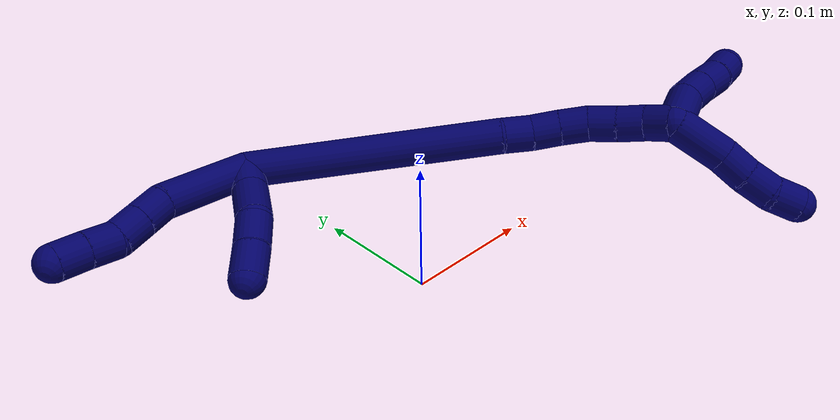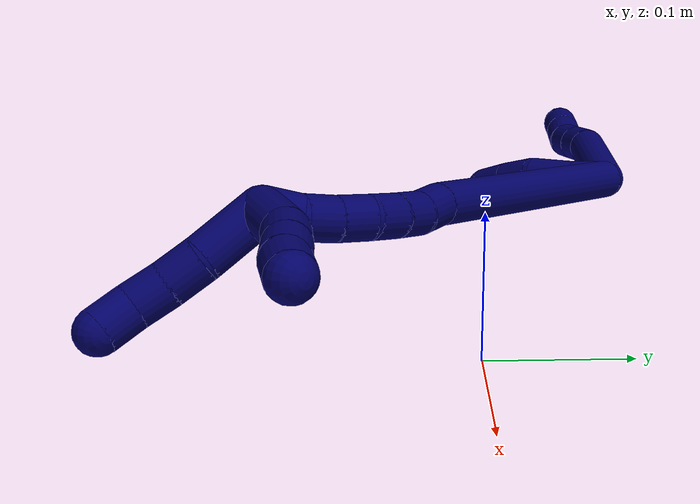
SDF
<sdf version="1.7">
 <world name="default">
  <model name="7">
   <static>0</static>
   <link name="7">
    <collision name="collision-cylinder-e_1_2_8">
     <pose>-0.009172 0.018687 0.026573 -0.612891 -0.275184 0.087569</pose>
     <geometry><cylinder><radius>0.0125</radius><length>0.067512</length></cylinder></geometry>
     <surface>
      <friction><ode><mu>1.16</mu><mu2>1.16</mu2><slip1>0</slip1><slip2>0</slip2></ode></friction>
      <contact><ode><kp>1e+06</kp><kd>1</kd><max_vel>0</max_vel><min_depth>0.001</min_depth></ode></contact>
     </surface>
    </collision>
    <visual name="visual-cylinder-e_1_2_8">
     <pose>-0.009172 0.018687 0.026573 -0.612891 -0.275184 0.087569</pose>
     <geometry><cylinder><radius>0.0125</radius><length>0.067512</length></cylinder></geometry>
     <material><ambient>0.003922 0 0.403922 1</ambient></material>
    </visual>
    <collision name="collision-cylinder-e_2_8_9">
     <pose>-0.021273 0.04032 0.062517 -0.304543 -0.289736 0.044769</pose>
     <geometry><cylinder><radius>0.0125</radius><length>0.0205</length></cylinder></geometry>
     <surface>
      <friction><ode><mu>1.16</mu><mu2>1.16</mu2><slip1>0</slip1><slip2>0</slip2></ode></friction>
      <contact><ode><kp>1e+06</kp><kd>1</kd><max_vel>0</max_vel><min_depth>0.001</min_depth></ode></contact>
     </surface>
    </collision>
    <visual name="visual-cylinder-e_2_8_9">
     <pose>-0.021273 0.04032 0.062517 -0.304543 -0.289736 0.044769</pose>
     <geometry><cylinder><radius>0.0125</radius><length>0.0205</length></cylinder></geometry>
     <material><ambient>0.003922 0 0.403922 1</ambient></material>
    </visual>
    <collision name="collision-cylinder-e_3_9_10">
     <pose>-0.02708 0.046218 0.081116 -0.309722 -0.288804 0.045394</pose>
     <geometry><cylinder><radius>0.0125</radius><length>0.020215</length></cylinder></geometry>
     <surface>
      <friction><ode><mu>1.16</mu><mu2>1.16</mu2><slip1>0</slip1><slip2>0</slip2></ode></friction>
      <contact><ode><kp>1e+06</kp><kd>1</kd><max_vel>0</max_vel><min_depth>0.001</min_depth></ode></contact>
     </surface>
    </collision>
    <visual name="visual-cylinder-e_3_9_10">
     <pose>-0.02708 0.046218 0.081116 -0.309722 -0.288804 0.045394</pose>
     <geometry><cylinder><radius>0.0125</radius><length>0.020215</length></cylinder></geometry>
     <material><ambient>0.003922 0 0.403922 1</ambient></material>
    </visual>
    <collision name="collision-cylinder-e_4_10_11">
     <pose>-0.033011 0.055468 0.098376 -0.664898 -0.290623 0.100968</pose>
     <geometry><cylinder><radius>0.0125</radius><length>0.021305</length></cylinder></geometry>
     <surface>
      <friction><ode><mu>1.16</mu><mu2>1.16</mu2><slip1>0</slip1><slip2>0</slip2></ode></friction>
      <contact><ode><kp>1e+06</kp><kd>1</kd><max_vel>0</max_vel><min_depth>0.001</min_depth></ode></contact>
     </surface>
    </collision>
    <visual name="visual-cylinder-e_4_10_11">
     <pose>-0.033011 0.055468 0.098376 -0.664898 -0.290623 0.100968</pose>
     <geometry><cylinder><radius>0.0125</radius><length>0.021305</length></cylinder></geometry>
     <material><ambient>0.003922 0 0.403922 1</ambient></material>
    </visual>
    <collision name="collision-cylinder-e_5_11_6">
     <pose>-0.039218 0.067482 0.114288 -0.627584 -0.313352 0.102438</pose>
     <geometry><cylinder><radius>0.0125</radius><length>0.020467</length></cylinder></geometry>
     <surface>
      <friction><ode><mu>1.16</mu><mu2>1.16</mu2><slip1>0</slip1><slip2>0</slip2></ode></friction>
      <contact><ode><kp>1e+06</kp><kd>1</kd><max_vel>0</max_vel><min_depth>0.001</min_depth></ode></contact>
     </surface>
    </collision>
    <visual name="visual-cylinder-e_5_11_6">
     <pose>-0.039218 0.067482 0.114288 -0.627584 -0.313352 0.102438</pose>
     <geometry><cylinder><radius>0.0125</radius><length>0.020467</length></cylinder></geometry>
     <material><ambient>0.003922 0 0.403922 1</ambient></material>
    </visual>
    <collision name="collision-cylinder-e_1_2_12">
     <pose>0.00301 -0.003232 0.010593 0.296102 0.265376 0.039807</pose>
     <geometry><cylinder><radius>0.0125</radius><length>0.022954</length></cylinder></geometry>
     <surface>
      <friction><ode><mu>1.16</mu><mu2>1.16</mu2><slip1>0</slip1><slip2>0</slip2></ode></friction>
      <contact><ode><kp>1e+06</kp><kd>1</kd><max_vel>0</max_vel><min_depth>0.001</min_depth></ode></contact>
     </surface>
    </collision>
    <visual name="visual-cylinder-e_1_2_12">
     <pose>0.00301 -0.003232 0.010593 0.296102 0.265376 0.039807</pose>
     <geometry><cylinder><radius>0.0125</radius><length>0.022954</length></cylinder></geometry>
     <material><ambient>0.003922 0 0.403922 1</ambient></material>
    </visual>
    <collision name="collision-cylinder-e_2_12_13">
     <pose>0.010846 -0.009601 0.035571 0.214764 0.316758 0.03443</pose>
     <geometry><cylinder><radius>0.0125</radius><length>0.030986</length></cylinder></geometry>
     <surface>
      <friction><ode><mu>1.16</mu><mu2>1.16</mu2><slip1>0</slip1><slip2>0</slip2></ode></friction>
      <contact><ode><kp>1e+06</kp><kd>1</kd><max_vel>0</max_vel><min_depth>0.001</min_depth></ode></contact>
     </surface>
    </collision>
    <visual name="visual-cylinder-e_2_12_13">
     <pose>0.010846 -0.009601 0.035571 0.214764 0.316758 0.03443</pose>
     <geometry><cylinder><radius>0.0125</radius><length>0.030986</length></cylinder></geometry>
     <material><ambient>0.003922 0 0.403922 1</ambient></material>
    </visual>
    <collision name="collision-cylinder-e_3_13_14">
     <pose>0.015633 -0.015675 0.061011 0.259578 -0.003412 -0.000445</pose>
     <geometry><cylinder><radius>0.0125</radius><length>0.022879</length></cylinder></geometry>
     <surface>
      <friction><ode><mu>1.16</mu><mu2>1.16</mu2><slip1>0</slip1><slip2>0</slip2></ode></friction>
      <contact><ode><kp>1e+06</kp><kd>1</kd><max_vel>0</max_vel><min_depth>0.001</min_depth></ode></contact>
     </surface>
    </collision>
    <visual name="visual-cylinder-e_3_13_14">
     <pose>0.015633 -0.015675 0.061011 0.259578 -0.003412 -0.000445</pose>
     <geometry><cylinder><radius>0.0125</radius><length>0.022879</length></cylinder></geometry>
     <material><ambient>0.003922 0 0.403922 1</ambient></material>
    </visual>
    <collision name="collision-cylinder-e_4_14_5">
     <pose>0.014547 -0.021584 0.08322 0.260496 -0.09043 -0.011853</pose>
     <geometry><cylinder><radius>0.0125</radius><length>0.023181</length></cylinder></geometry>
     <surface>
      <friction><ode><mu>1.16</mu><mu2>1.16</mu2><slip1>0</slip1><slip2>0</slip2></ode></friction>
      <contact><ode><kp>1e+06</kp><kd>1</kd><max_vel>0</max_vel><min_depth>0.001</min_depth></ode></contact>
     </surface>
    </collision>
    <visual name="visual-cylinder-e_4_14_5">
     <pose>0.014547 -0.021584 0.08322 0.260496 -0.09043 -0.011853</pose>
     <geometry><cylinder><radius>0.0125</radius><length>0.023181</length></cylinder></geometry>
     <material><ambient>0.003922 0 0.403922 1</ambient></material>
    </visual>
    <collision name="collision-cylinder-e_1_2_15">
     <pose>0.068564 -0.054993 -0.017557 1.87983 0.870992 1.13433</pose>
     <geometry><cylinder><radius>0.0125</radius><length>0.17926</length></cylinder></geometry>
     <surface>
      <friction><ode><mu>1.16</mu><mu2>1.16</mu2><slip1>0</slip1><slip2>0</slip2></ode></friction>
      <contact><ode><kp>1e+06</kp><kd>1</kd><max_vel>0</max_vel><min_depth>0.001</min_depth></ode></contact>
     </surface>
    </collision>
    <visual name="visual-cylinder-e_1_2_15">
     <pose>0.068564 -0.054993 -0.017557 1.87983 0.870992 1.13433</pose>
     <geometry><cylinder><radius>0.0125</radius><length>0.17926</length></cylinder></geometry>
     <material><ambient>0.003922 0 0.403922 1</ambient></material>
    </visual>
    <collision name="collision-cylinder-e_2_15_16">
     <pose>0.143756 -0.117076 -0.03827 1.98958 0.706786 1.03306</pose>
     <geometry><cylinder><radius>0.0125</radius><length>0.020411</length></cylinder></geometry>
     <surface>
      <friction><ode><mu>1.16</mu><mu2>1.16</mu2><slip1>0</slip1><slip2>0</slip2></ode></friction>
      <contact><ode><kp>1e+06</kp><kd>1</kd><max_vel>0</max_vel><min_depth>0.001</min_depth></ode></contact>
     </surface>
    </collision>
    <visual name="visual-cylinder-e_2_15_16">
     <pose>0.143756 -0.117076 -0.03827 1.98958 0.706786 1.03306</pose>
     <geometry><cylinder><radius>0.0125</radius><length>0.020411</length></cylinder></geometry>
     <material><ambient>0.003922 0 0.403922 1</ambient></material>
    </visual>
    <collision name="collision-cylinder-e_3_16_17">
     <pose>0.158226 -0.129995 -0.043751 1.95034 0.895993 1.23362</pose>
     <geometry><cylinder><radius>0.0125</radius><length>0.020088</length></cylinder></geometry>
     <surface>
      <friction><ode><mu>1.16</mu><mu2>1.16</mu2><slip1>0</slip1><slip2>0</slip2></ode></friction>
      <contact><ode><kp>1e+06</kp><kd>1</kd><max_vel>0</max_vel><min_depth>0.001</min_depth></ode></contact>
     </surface>
    </collision>
    <visual name="visual-cylinder-e_3_16_17">
     <pose>0.158226 -0.129995 -0.043751 1.95034 0.895993 1.23362</pose>
     <geometry><cylinder><radius>0.0125</radius><length>0.020088</length></cylinder></geometry>
     <material><ambient>0.003922 0 0.403922 1</ambient></material>
    </visual>
    <collision name="collision-cylinder-e_4_17_18">
     <pose>0.174173 -0.141637 -0.047504 1.81173 0.93462 1.14369</pose>
     <geometry><cylinder><radius>0.0125</radius><length>0.020151</length></cylinder></geometry>
     <surface>
      <friction><ode><mu>1.16</mu><mu2>1.16</mu2><slip1>0</slip1><slip2>0</slip2></ode></friction>
      <contact><ode><kp>1e+06</kp><kd>1</kd><max_vel>0</max_vel><min_depth>0.001</min_depth></ode></contact>
     </surface>
    </collision>
    <visual name="visual-cylinder-e_4_17_18">
     <pose>0.174173 -0.141637 -0.047504 1.81173 0.93462 1.14369</pose>
     <geometry><cylinder><radius>0.0125</radius><length>0.020151</length></cylinder></geometry>
     <material><ambient>0.003922 0 0.403922 1</ambient></material>
    </visual>
    <collision name="collision-cylinder-e_5_18_19">
     <pose>0.190279 -0.153378 -0.047972 1.41021 0.92695 0.80432</pose>
     <geometry><cylinder><radius>0.0125</radius><length>0.02001</length></cylinder></geometry>
     <surface>
      <friction><ode><mu>1.16</mu><mu2>1.16</mu2><slip1>0</slip1><slip2>0</slip2></ode></friction>
      <contact><ode><kp>1e+06</kp><kd>1</kd><max_vel>0</max_vel><min_depth>0.001</min_depth></ode></contact>
     </surface>
    </collision>
    <visual name="visual-cylinder-e_5_18_19">
     <pose>0.190279 -0.153378 -0.047972 1.41021 0.92695 0.80432</pose>
     <geometry><cylinder><radius>0.0125</radius><length>0.02001</length></cylinder></geometry>
     <material><ambient>0.003922 0 0.403922 1</ambient></material>
    </visual>
    <collision name="collision-cylinder-e_6_19_20">
     <pose>0.206723 -0.164614 -0.046016 1.38537 1.00177 0.852866</pose>
     <geometry><cylinder><radius>0.0125</radius><length>0.020042</length></cylinder></geometry>
     <surface>
      <friction><ode><mu>1.16</mu><mu2>1.16</mu2><slip1>0</slip1><slip2>0</slip2></ode></friction>
      <contact><ode><kp>1e+06</kp><kd>1</kd><max_vel>0</max_vel><min_depth>0.001</min_depth></ode></contact>
     </surface>
    </collision>
    <visual name="visual-cylinder-e_6_19_20">
     <pose>0.206723 -0.164614 -0.046016 1.38537 1.00177 0.852866</pose>
     <geometry><cylinder><radius>0.0125</radius><length>0.020042</length></cylinder></geometry>
     <material><ambient>0.003922 0 0.403922 1</ambient></material>
    </visual>
    <collision name="collision-cylinder-e_7_20_1">
     <pose>0.223698 -0.173578 -0.041254 0.770643 1.01916 0.44577</pose>
     <geometry><cylinder><radius>0.0125</radius><length>0.020037</length></cylinder></geometry>
     <surface>
      <friction><ode><mu>1.16</mu><mu2>1.16</mu2><slip1>0</slip1><slip2>0</slip2></ode></friction>
      <contact><ode><kp>1e+06</kp><kd>1</kd><max_vel>0</max_vel><min_depth>0.001</min_depth></ode></contact>
     </surface>
    </collision>
    <visual name="visual-cylinder-e_7_20_1">
     <pose>0.223698 -0.173578 -0.041254 0.770643 1.01916 0.44577</pose>
     <geometry><cylinder><radius>0.0125</radius><length>0.020037</length></cylinder></geometry>
     <material><ambient>0.003922 0 0.403922 1</ambient></material>
    </visual>
    <collision name="collision-cylinder-e_1_1_21">
     <pose>0.233169 -0.182097 -0.054898 2.86931 0.051878 0.374355</pose>
     <geometry><cylinder><radius>0.0125</radius><length>0.036204</length></cylinder></geometry>
     <surface>
      <friction><ode><mu>1.16</mu><mu2>1.16</mu2><slip1>0</slip1><slip2>0</slip2></ode></friction>
      <contact><ode><kp>1e+06</kp><kd>1</kd><max_vel>0</max_vel><min_depth>0.001</min_depth></ode></contact>
     </surface>
    </collision>
    <visual name="visual-cylinder-e_1_1_21">
     <pose>0.233169 -0.182097 -0.054898 2.86931 0.051878 0.374355</pose>
     <geometry><cylinder><radius>0.0125</radius><length>0.036204</length></cylinder></geometry>
     <material><ambient>0.003922 0 0.403922 1</ambient></material>
    </visual>
    <collision name="collision-cylinder-e_2_21_22">
     <pose>0.237433 -0.191691 -0.081911 2.68372 0.301211 1.1545</pose>
     <geometry><cylinder><radius>0.0125</radius><length>0.022417</length></cylinder></geometry>
     <surface>
      <friction><ode><mu>1.16</mu><mu2>1.16</mu2><slip1>0</slip1><slip2>0</slip2></ode></friction>
      <contact><ode><kp>1e+06</kp><kd>1</kd><max_vel>0</max_vel><min_depth>0.001</min_depth></ode></contact>
     </surface>
    </collision>
    <visual name="visual-cylinder-e_2_21_22">
     <pose>0.237433 -0.191691 -0.081911 2.68372 0.301211 1.1545</pose>
     <geometry><cylinder><radius>0.0125</radius><length>0.022417</length></cylinder></geometry>
     <material><ambient>0.003922 0 0.403922 1</ambient></material>
    </visual>
    <collision name="collision-cylinder-e_3_22_23">
     <pose>0.244261 -0.201389 -0.100079 2.61619 0.339959 1.13614</pose>
     <geometry><cylinder><radius>0.0125</radius><length>0.021007</length></cylinder></geometry>
     <surface>
      <friction><ode><mu>1.16</mu><mu2>1.16</mu2><slip1>0</slip1><slip2>0</slip2></ode></friction>
      <contact><ode><kp>1e+06</kp><kd>1</kd><max_vel>0</max_vel><min_depth>0.001</min_depth></ode></contact>
     </surface>
    </collision>
    <visual name="visual-cylinder-e_3_22_23">
     <pose>0.244261 -0.201389 -0.100079 2.61619 0.339959 1.13614</pose>
     <geometry><cylinder><radius>0.0125</radius><length>0.021007</length></cylinder></geometry>
     <material><ambient>0.003922 0 0.403922 1</ambient></material>
    </visual>
    <collision name="collision-cylinder-e_4_23_4">
     <pose>0.249892 -0.210341 -0.117775 2.72996 0.210532 0.937015</pose>
     <geometry><cylinder><radius>0.0125</radius><length>0.020372</length></cylinder></geometry>
     <surface>
      <friction><ode><mu>1.16</mu><mu2>1.16</mu2><slip1>0</slip1><slip2>0</slip2></ode></friction>
      <contact><ode><kp>1e+06</kp><kd>1</kd><max_vel>0</max_vel><min_depth>0.001</min_depth></ode></contact>
     </surface>
    </collision>
    <visual name="visual-cylinder-e_4_23_4">
     <pose>0.249892 -0.210341 -0.117775 2.72996 0.210532 0.937015</pose>
     <geometry><cylinder><radius>0.0125</radius><length>0.020372</length></cylinder></geometry>
     <material><ambient>0.003922 0 0.403922 1</ambient></material>
    </visual>
    <collision name="collision-cylinder-e_1_1_24">
     <pose>0.237327 -0.195725 -0.03441 1.40592 0.265466 0.225318</pose>
     <geometry><cylinder><radius>0.0125</radius><length>0.038848</length></cylinder></geometry>
     <surface>
      <friction><ode><mu>1.16</mu><mu2>1.16</mu2><slip1>0</slip1><slip2>0</slip2></ode></friction>
      <contact><ode><kp>1e+06</kp><kd>1</kd><max_vel>0</max_vel><min_depth>0.001</min_depth></ode></contact>
     </surface>
    </collision>
    <visual name="visual-cylinder-e_1_1_24">
     <pose>0.237327 -0.195725 -0.03441 1.40592 0.265466 0.225318</pose>
     <geometry><cylinder><radius>0.0125</radius><length>0.038848</length></cylinder></geometry>
     <material><ambient>0.003922 0 0.403922 1</ambient></material>
    </visual>
    <collision name="collision-cylinder-e_2_24_25">
     <pose>0.244678 -0.22358 -0.027655 1.19651 0.220453 0.150583</pose>
     <geometry><cylinder><radius>0.0125</radius><length>0.020624</length></cylinder></geometry>
     <surface>
      <friction><ode><mu>1.16</mu><mu2>1.16</mu2><slip1>0</slip1><slip2>0</slip2></ode></friction>
      <contact><ode><kp>1e+06</kp><kd>1</kd><max_vel>0</max_vel><min_depth>0.001</min_depth></ode></contact>
     </surface>
    </collision>
    <visual name="visual-cylinder-e_2_24_25">
     <pose>0.244678 -0.22358 -0.027655 1.19651 0.220453 0.150583</pose>
     <geometry><cylinder><radius>0.0125</radius><length>0.020624</length></cylinder></geometry>
     <material><ambient>0.003922 0 0.403922 1</ambient></material>
    </visual>
    <collision name="collision-cylinder-e_3_25_26">
     <pose>0.250109 -0.242101 -0.021021 1.25859 0.318848 0.233059</pose>
     <geometry><cylinder><radius>0.0125</radius><length>0.020263</length></cylinder></geometry>
     <surface>
      <friction><ode><mu>1.16</mu><mu2>1.16</mu2><slip1>0</slip1><slip2>0</slip2></ode></friction>
      <contact><ode><kp>1e+06</kp><kd>1</kd><max_vel>0</max_vel><min_depth>0.001</min_depth></ode></contact>
     </surface>
    </collision>
    <visual name="visual-cylinder-e_3_25_26">
     <pose>0.250109 -0.242101 -0.021021 1.25859 0.318848 0.233059</pose>
     <geometry><cylinder><radius>0.0125</radius><length>0.020263</length></cylinder></geometry>
     <material><ambient>0.003922 0 0.403922 1</ambient></material>
    </visual>
    <collision name="collision-cylinder-e_4_26_3">
     <pose>0.257174 -0.260613 -0.017954 1.55881 0.393961 0.389384</pose>
     <geometry><cylinder><radius>0.0125</radius><length>0.020266</length></cylinder></geometry>
     <surface>
      <friction><ode><mu>1.16</mu><mu2>1.16</mu2><slip1>0</slip1><slip2>0</slip2></ode></friction>
      <contact><ode><kp>1e+06</kp><kd>1</kd><max_vel>0</max_vel><min_depth>0.001</min_depth></ode></contact>
     </surface>
    </collision>
    <visual name="visual-cylinder-e_4_26_3">
     <pose>0.257174 -0.260613 -0.017954 1.55881 0.393961 0.389384</pose>
     <geometry><cylinder><radius>0.0125</radius><length>0.020266</length></cylinder></geometry>
     <material><ambient>0.003922 0 0.403922 1</ambient></material>
    </visual>
    <collision name="collision-sphere-3">
     <pose>0.261063 -0.269969 -0.017842 0 -0 0</pose>
     <geometry><sphere><radius>0.0125</radius></sphere></geometry>
     <surface>
      <friction><ode><mu>1.16</mu><mu2>1.16</mu2><slip1>0</slip1><slip2>0</slip2></ode></friction>
      <contact><ode><kp>1e+06</kp><kd>1</kd><max_vel>0</max_vel><min_depth>0.001</min_depth></ode></contact>
     </surface>
    </collision>
    <visual name="visual-sphere-3">
     <pose>0.261063 -0.269969 -0.017842 0 -0 0</pose>
     <geometry><sphere><radius>0.0125</radius></sphere></geometry>
     <material><ambient>0.003922 0 0.403922 1</ambient></material>
    </visual>
    <collision name="collision-sphere-26">
     <pose>0.253285 -0.251257 -0.018066 0 -0 0</pose>
     <geometry><sphere><radius>0.0125</radius></sphere></geometry>
     <surface>
      <friction><ode><mu>1.16</mu><mu2>1.16</mu2><slip1>0</slip1><slip2>0</slip2></ode></friction>
      <contact><ode><kp>1e+06</kp><kd>1</kd><max_vel>0</max_vel><min_depth>0.001</min_depth></ode></contact>
     </surface>
    </collision>
    <visual name="visual-sphere-26">
     <pose>0.253285 -0.251257 -0.018066 0 -0 0</pose>
     <geometry><sphere><radius>0.0125</radius></sphere></geometry>
     <material><ambient>0.003922 0 0.403922 1</ambient></material>
    </visual>
    <collision name="collision-sphere-25">
     <pose>0.246933 -0.232946 -0.023976 0 -0 0</pose>
     <geometry><sphere><radius>0.0125</radius></sphere></geometry>
     <surface>
      <friction><ode><mu>1.16</mu><mu2>1.16</mu2><slip1>0</slip1><slip2>0</slip2></ode></friction>
      <contact><ode><kp>1e+06</kp><kd>1</kd><max_vel>0</max_vel><min_depth>0.001</min_depth></ode></contact>
     </surface>
    </collision>
    <visual name="visual-sphere-25">
     <pose>0.246933 -0.232946 -0.023976 0 -0 0</pose>
     <geometry><sphere><radius>0.0125</radius></sphere></geometry>
     <material><ambient>0.003922 0 0.403922 1</ambient></material>
    </visual>
    <collision name="collision-sphere-24">
     <pose>0.242423 -0.214214 -0.031334 0 -0 0</pose>
     <geometry><sphere><radius>0.0125</radius></sphere></geometry>
     <surface>
      <friction><ode><mu>1.16</mu><mu2>1.16</mu2><slip1>0</slip1><slip2>0</slip2></ode></friction>
      <contact><ode><kp>1e+06</kp><kd>1</kd><max_vel>0</max_vel><min_depth>0.001</min_depth></ode></contact>
     </surface>
    </collision>
    <visual name="visual-sphere-24">
     <pose>0.242423 -0.214214 -0.031334 0 -0 0</pose>
     <geometry><sphere><radius>0.0125</radius></sphere></geometry>
     <material><ambient>0.003922 0 0.403922 1</ambient></material>
    </visual>
    <collision name="collision-sphere-4">
     <pose>0.252021 -0.214326 -0.126904 0 -0 0</pose>
     <geometry><sphere><radius>0.0125</radius></sphere></geometry>
     <surface>
      <friction><ode><mu>1.16</mu><mu2>1.16</mu2><slip1>0</slip1><slip2>0</slip2></ode></friction>
      <contact><ode><kp>1e+06</kp><kd>1</kd><max_vel>0</max_vel><min_depth>0.001</min_depth></ode></contact>
     </surface>
    </collision>
    <visual name="visual-sphere-4">
     <pose>0.252021 -0.214326 -0.126904 0 -0 0</pose>
     <geometry><sphere><radius>0.0125</radius></sphere></geometry>
     <material><ambient>0.003922 0 0.403922 1</ambient></material>
    </visual>
    <collision name="collision-sphere-23">
     <pose>0.247763 -0.206355 -0.108646 0 -0 0</pose>
     <geometry><sphere><radius>0.0125</radius></sphere></geometry>
     <surface>
      <friction><ode><mu>1.16</mu><mu2>1.16</mu2><slip1>0</slip1><slip2>0</slip2></ode></friction>
      <contact><ode><kp>1e+06</kp><kd>1</kd><max_vel>0</max_vel><min_depth>0.001</min_depth></ode></contact>
     </surface>
    </collision>
    <visual name="visual-sphere-23">
     <pose>0.247763 -0.206355 -0.108646 0 -0 0</pose>
     <geometry><sphere><radius>0.0125</radius></sphere></geometry>
     <material><ambient>0.003922 0 0.403922 1</ambient></material>
    </visual>
    <collision name="collision-sphere-22">
     <pose>0.240759 -0.196422 -0.091512 0 -0 0</pose>
     <geometry><sphere><radius>0.0125</radius></sphere></geometry>
     <surface>
      <friction><ode><mu>1.16</mu><mu2>1.16</mu2><slip1>0</slip1><slip2>0</slip2></ode></friction>
      <contact><ode><kp>1e+06</kp><kd>1</kd><max_vel>0</max_vel><min_depth>0.001</min_depth></ode></contact>
     </surface>
    </collision>
    <visual name="visual-sphere-22">
     <pose>0.240759 -0.196422 -0.091512 0 -0 0</pose>
     <geometry><sphere><radius>0.0125</radius></sphere></geometry>
     <material><ambient>0.003922 0 0.403922 1</ambient></material>
    </visual>
    <collision name="collision-sphere-21">
     <pose>0.234108 -0.186959 -0.07231 0 -0 0</pose>
     <geometry><sphere><radius>0.0125</radius></sphere></geometry>
     <surface>
      <friction><ode><mu>1.16</mu><mu2>1.16</mu2><slip1>0</slip1><slip2>0</slip2></ode></friction>
      <contact><ode><kp>1e+06</kp><kd>1</kd><max_vel>0</max_vel><min_depth>0.001</min_depth></ode></contact>
     </surface>
    </collision>
    <visual name="visual-sphere-21">
     <pose>0.234108 -0.186959 -0.07231 0 -0 0</pose>
     <geometry><sphere><radius>0.0125</radius></sphere></geometry>
     <material><ambient>0.003922 0 0.403922 1</ambient></material>
    </visual>
    <collision name="collision-sphere-1">
     <pose>0.232231 -0.177236 -0.037487 0 -0 0</pose>
     <geometry><sphere><radius>0.0125</radius></sphere></geometry>
     <surface>
      <friction><ode><mu>1.16</mu><mu2>1.16</mu2><slip1>0</slip1><slip2>0</slip2></ode></friction>
      <contact><ode><kp>1e+06</kp><kd>1</kd><max_vel>0</max_vel><min_depth>0.001</min_depth></ode></contact>
     </surface>
    </collision>
    <visual name="visual-sphere-1">
     <pose>0.232231 -0.177236 -0.037487 0 -0 0</pose>
     <geometry><sphere><radius>0.0125</radius></sphere></geometry>
     <material><ambient>0.003922 0 0.403922 1</ambient></material>
    </visual>
    <collision name="collision-sphere-6">
     <pose>-0.042373 0.073198 0.122168 0 -0 0</pose>
     <geometry><sphere><radius>0.0125</radius></sphere></geometry>
     <surface>
      <friction><ode><mu>1.16</mu><mu2>1.16</mu2><slip1>0</slip1><slip2>0</slip2></ode></friction>
      <contact><ode><kp>1e+06</kp><kd>1</kd><max_vel>0</max_vel><min_depth>0.001</min_depth></ode></contact>
     </surface>
    </collision>
    <visual name="visual-sphere-6">
     <pose>-0.042373 0.073198 0.122168 0 -0 0</pose>
     <geometry><sphere><radius>0.0125</radius></sphere></geometry>
     <material><ambient>0.003922 0 0.403922 1</ambient></material>
    </visual>
    <collision name="collision-sphere-11">
     <pose>-0.036064 0.061765 0.106408 0 -0 0</pose>
     <geometry><sphere><radius>0.0125</radius></sphere></geometry>
     <surface>
      <friction><ode><mu>1.16</mu><mu2>1.16</mu2><slip1>0</slip1><slip2>0</slip2></ode></friction>
      <contact><ode><kp>1e+06</kp><kd>1</kd><max_vel>0</max_vel><min_depth>0.001</min_depth></ode></contact>
     </surface>
    </collision>
    <visual name="visual-sphere-11">
     <pose>-0.036064 0.061765 0.106408 0 -0 0</pose>
     <geometry><sphere><radius>0.0125</radius></sphere></geometry>
     <material><ambient>0.003922 0 0.403922 1</ambient></material>
    </visual>
    <collision name="collision-sphere-10">
     <pose>-0.029959 0.049171 0.090344 0 -0 0</pose>
     <geometry><sphere><radius>0.0125</radius></sphere></geometry>
     <surface>
      <friction><ode><mu>1.16</mu><mu2>1.16</mu2><slip1>0</slip1><slip2>0</slip2></ode></friction>
      <contact><ode><kp>1e+06</kp><kd>1</kd><max_vel>0</max_vel><min_depth>0.001</min_depth></ode></contact>
     </surface>
    </collision>
    <visual name="visual-sphere-10">
     <pose>-0.029959 0.049171 0.090344 0 -0 0</pose>
     <geometry><sphere><radius>0.0125</radius></sphere></geometry>
     <material><ambient>0.003922 0 0.403922 1</ambient></material>
    </visual>
    <collision name="collision-sphere-9">
     <pose>-0.024202 0.043265 0.071888 0 -0 0</pose>
     <geometry><sphere><radius>0.0125</radius></sphere></geometry>
     <surface>
      <friction><ode><mu>1.16</mu><mu2>1.16</mu2><slip1>0</slip1><slip2>0</slip2></ode></friction>
      <contact><ode><kp>1e+06</kp><kd>1</kd><max_vel>0</max_vel><min_depth>0.001</min_depth></ode></contact>
     </surface>
    </collision>
    <visual name="visual-sphere-9">
     <pose>-0.024202 0.043265 0.071888 0 -0 0</pose>
     <geometry><sphere><radius>0.0125</radius></sphere></geometry>
     <material><ambient>0.003922 0 0.403922 1</ambient></material>
    </visual>
    <collision name="collision-sphere-2">
     <geometry><sphere><radius>0.0125</radius></sphere></geometry>
     <surface>
      <friction><ode><mu>1.16</mu><mu2>1.16</mu2><slip1>0</slip1><slip2>0</slip2></ode></friction>
      <contact><ode><kp>1e+06</kp><kd>1</kd><max_vel>0</max_vel><min_depth>0.001</min_depth></ode></contact>
     </surface>
    </collision>
    <visual name="visual-sphere-2">
     <geometry><sphere><radius>0.0125</radius></sphere></geometry>
     <material><ambient>0.003922 0 0.403922 1</ambient></material>
    </visual>
    <collision name="collision-sphere-19">
     <pose>0.198281 -0.159307 -0.047012 0 -0 0</pose>
     <geometry><sphere><radius>0.0125</radius></sphere></geometry>
     <surface>
      <friction><ode><mu>1.16</mu><mu2>1.16</mu2><slip1>0</slip1><slip2>0</slip2></ode></friction>
      <contact><ode><kp>1e+06</kp><kd>1</kd><max_vel>0</max_vel><min_depth>0.001</min_depth></ode></contact>
     </surface>
    </collision>
    <visual name="visual-sphere-19">
     <pose>0.198281 -0.159307 -0.047012 0 -0 0</pose>
     <geometry><sphere><radius>0.0125</radius></sphere></geometry>
     <material><ambient>0.003922 0 0.403922 1</ambient></material>
    </visual>
    <collision name="collision-sphere-8">
     <pose>-0.018345 0.037374 0.053146 0 -0 0</pose>
     <geometry><sphere><radius>0.0125</radius></sphere></geometry>
     <surface>
      <friction><ode><mu>1.16</mu><mu2>1.16</mu2><slip1>0</slip1><slip2>0</slip2></ode></friction>
      <contact><ode><kp>1e+06</kp><kd>1</kd><max_vel>0</max_vel><min_depth>0.001</min_depth></ode></contact>
     </surface>
    </collision>
    <visual name="visual-sphere-8">
     <pose>-0.018345 0.037374 0.053146 0 -0 0</pose>
     <geometry><sphere><radius>0.0125</radius></sphere></geometry>
     <material><ambient>0.003922 0 0.403922 1</ambient></material>
    </visual>
    <collision name="collision-sphere-12">
     <pose>0.00602 -0.006463 0.021186 0 -0 0</pose>
     <geometry><sphere><radius>0.0125</radius></sphere></geometry>
     <surface>
      <friction><ode><mu>1.16</mu><mu2>1.16</mu2><slip1>0</slip1><slip2>0</slip2></ode></friction>
      <contact><ode><kp>1e+06</kp><kd>1</kd><max_vel>0</max_vel><min_depth>0.001</min_depth></ode></contact>
     </surface>
    </collision>
    <visual name="visual-sphere-12">
     <pose>0.00602 -0.006463 0.021186 0 -0 0</pose>
     <geometry><sphere><radius>0.0125</radius></sphere></geometry>
     <material><ambient>0.003922 0 0.403922 1</ambient></material>
    </visual>
    <collision name="collision-sphere-13">
     <pose>0.015672 -0.012739 0.049955 0 -0 0</pose>
     <geometry><sphere><radius>0.0125</radius></sphere></geometry>
     <surface>
      <friction><ode><mu>1.16</mu><mu2>1.16</mu2><slip1>0</slip1><slip2>0</slip2></ode></friction>
      <contact><ode><kp>1e+06</kp><kd>1</kd><max_vel>0</max_vel><min_depth>0.001</min_depth></ode></contact>
     </surface>
    </collision>
    <visual name="visual-sphere-13">
     <pose>0.015672 -0.012739 0.049955 0 -0 0</pose>
     <geometry><sphere><radius>0.0125</radius></sphere></geometry>
     <material><ambient>0.003922 0 0.403922 1</ambient></material>
    </visual>
    <collision name="collision-sphere-14">
     <pose>0.015594 -0.018611 0.072067 0 -0 0</pose>
     <geometry><sphere><radius>0.0125</radius></sphere></geometry>
     <surface>
      <friction><ode><mu>1.16</mu><mu2>1.16</mu2><slip1>0</slip1><slip2>0</slip2></ode></friction>
      <contact><ode><kp>1e+06</kp><kd>1</kd><max_vel>0</max_vel><min_depth>0.001</min_depth></ode></contact>
     </surface>
    </collision>
    <visual name="visual-sphere-14">
     <pose>0.015594 -0.018611 0.072067 0 -0 0</pose>
     <geometry><sphere><radius>0.0125</radius></sphere></geometry>
     <material><ambient>0.003922 0 0.403922 1</ambient></material>
    </visual>
    <collision name="collision-sphere-5">
     <pose>0.0135 -0.024557 0.094374 0 -0 0</pose>
     <geometry><sphere><radius>0.0125</radius></sphere></geometry>
     <surface>
      <friction><ode><mu>1.16</mu><mu2>1.16</mu2><slip1>0</slip1><slip2>0</slip2></ode></friction>
      <contact><ode><kp>1e+06</kp><kd>1</kd><max_vel>0</max_vel><min_depth>0.001</min_depth></ode></contact>
     </surface>
    </collision>
    <visual name="visual-sphere-5">
     <pose>0.0135 -0.024557 0.094374 0 -0 0</pose>
     <geometry><sphere><radius>0.0125</radius></sphere></geometry>
     <material><ambient>0.003922 0 0.403922 1</ambient></material>
    </visual>
    <collision name="collision-sphere-15">
     <pose>0.137128 -0.109986 -0.035114 0 -0 0</pose>
     <geometry><sphere><radius>0.0125</radius></sphere></geometry>
     <surface>
      <friction><ode><mu>1.16</mu><mu2>1.16</mu2><slip1>0</slip1><slip2>0</slip2></ode></friction>
      <contact><ode><kp>1e+06</kp><kd>1</kd><max_vel>0</max_vel><min_depth>0.001</min_depth></ode></contact>
     </surface>
    </collision>
    <visual name="visual-sphere-15">
     <pose>0.137128 -0.109986 -0.035114 0 -0 0</pose>
     <geometry><sphere><radius>0.0125</radius></sphere></geometry>
     <material><ambient>0.003922 0 0.403922 1</ambient></material>
    </visual>
    <collision name="collision-sphere-16">
     <pose>0.150383 -0.124167 -0.041426 0 -0 0</pose>
     <geometry><sphere><radius>0.0125</radius></sphere></geometry>
     <surface>
      <friction><ode><mu>1.16</mu><mu2>1.16</mu2><slip1>0</slip1><slip2>0</slip2></ode></friction>
      <contact><ode><kp>1e+06</kp><kd>1</kd><max_vel>0</max_vel><min_depth>0.001</min_depth></ode></contact>
     </surface>
    </collision>
    <visual name="visual-sphere-16">
     <pose>0.150383 -0.124167 -0.041426 0 -0 0</pose>
     <geometry><sphere><radius>0.0125</radius></sphere></geometry>
     <material><ambient>0.003922 0 0.403922 1</ambient></material>
    </visual>
    <collision name="collision-sphere-17">
     <pose>0.166068 -0.135823 -0.046076 0 -0 0</pose>
     <geometry><sphere><radius>0.0125</radius></sphere></geometry>
     <surface>
      <friction><ode><mu>1.16</mu><mu2>1.16</mu2><slip1>0</slip1><slip2>0</slip2></ode></friction>
      <contact><ode><kp>1e+06</kp><kd>1</kd><max_vel>0</max_vel><min_depth>0.001</min_depth></ode></contact>
     </surface>
    </collision>
    <visual name="visual-sphere-17">
     <pose>0.166068 -0.135823 -0.046076 0 -0 0</pose>
     <geometry><sphere><radius>0.0125</radius></sphere></geometry>
     <material><ambient>0.003922 0 0.403922 1</ambient></material>
    </visual>
    <collision name="collision-sphere-18">
     <pose>0.182277 -0.14745 -0.048932 0 -0 0</pose>
     <geometry><sphere><radius>0.0125</radius></sphere></geometry>
     <surface>
      <friction><ode><mu>1.16</mu><mu2>1.16</mu2><slip1>0</slip1><slip2>0</slip2></ode></friction>
      <contact><ode><kp>1e+06</kp><kd>1</kd><max_vel>0</max_vel><min_depth>0.001</min_depth></ode></contact>
     </surface>
    </collision>
    <visual name="visual-sphere-18">
     <pose>0.182277 -0.14745 -0.048932 0 -0 0</pose>
     <geometry><sphere><radius>0.0125</radius></sphere></geometry>
     <material><ambient>0.003922 0 0.403922 1</ambient></material>
    </visual>
    <collision name="collision-sphere-20">
     <pose>0.215166 -0.169921 -0.045021 0 -0 0</pose>
     <geometry><sphere><radius>0.0125</radius></sphere></geometry>
     <surface>
      <friction><ode><mu>1.16</mu><mu2>1.16</mu2><slip1>0</slip1><slip2>0</slip2></ode></friction>
      <contact><ode><kp>1e+06</kp><kd>1</kd><max_vel>0</max_vel><min_depth>0.001</min_depth></ode></contact>
     </surface>
    </collision>
    <visual name="visual-sphere-20">
     <pose>0.215166 -0.169921 -0.045021 0 -0 0</pose>
     <geometry><sphere><radius>0.0125</radius></sphere></geometry>
     <material><ambient>0.003922 0 0.403922 1</ambient></material>
    </visual>
    <inertial>
     <pose>0.107826 -0.086683 -0.007566 0 -0 0</pose>
     <mass>0.75</mass>
     <inertia>
      <ixx>0.000515</ixx>
      <ixy>0</ixy>
      <ixz>0</ixz>
      <iyy>0.000579</iyy>
      <iyz>0</iyz>
      <izz>-6.6e-05</izz>
     </inertia>
    </inertial>
   </link>
   <pose>-0.08182 0.089327 0.097704 1.7663 -0.770187 -1.06528</pose>
  </model>
 </world>
</sdf>
